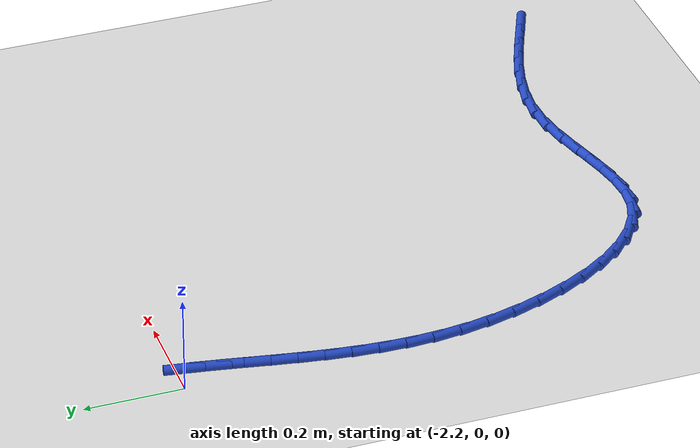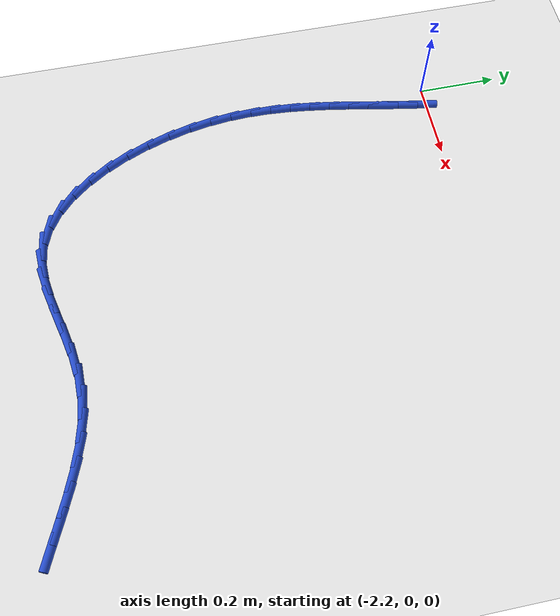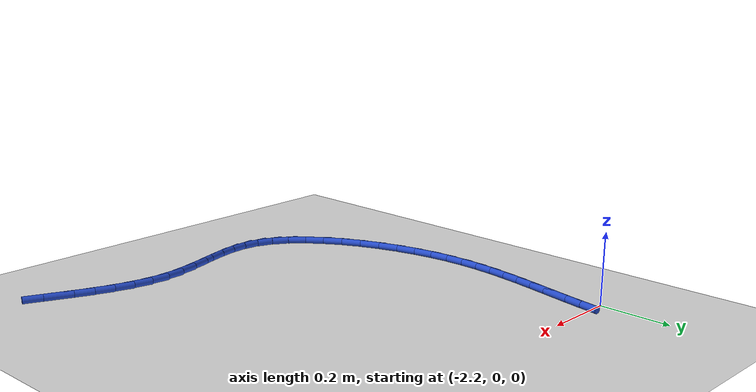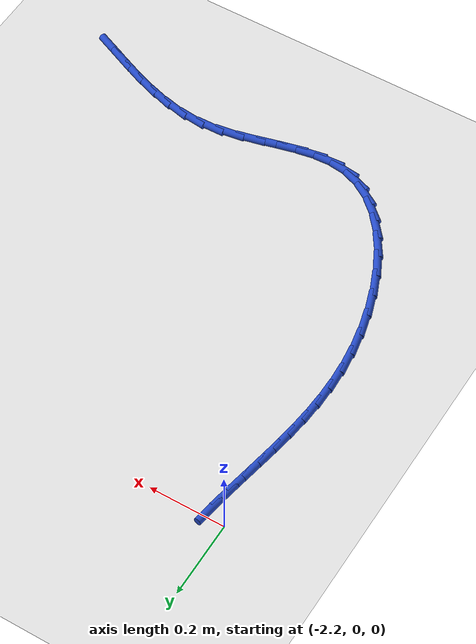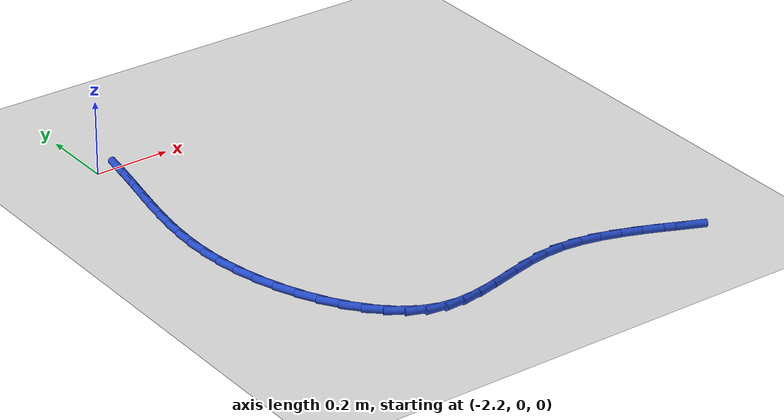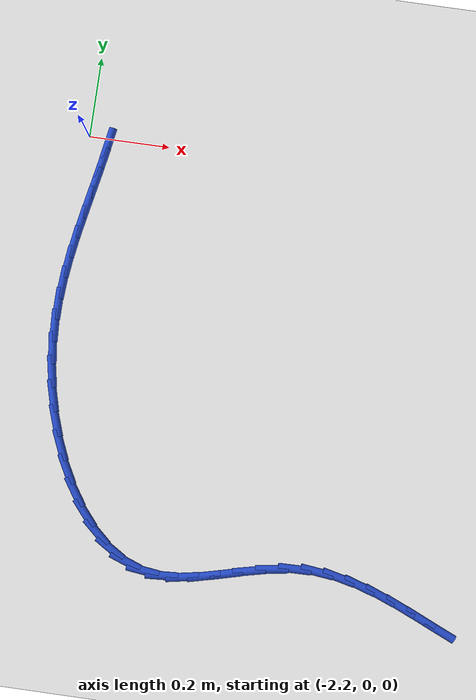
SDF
<sdf version="1.6">
 <world name="default">
  <model name="ground_plane">
   <static>1</static>
   <link name="link">
    <collision name="collision">
     <geometry><plane><normal>0 0 1</normal><size>100 100</size></plane></geometry>
     <surface><friction><ode><mu>100</mu><mu2>50</mu2></ode></friction></surface>
    </collision>
    <visual name="visual">
     <cast_shadows>0</cast_shadows>
     <geometry><plane><normal>0 0 1</normal><size>100 100</size></plane></geometry>
     <material>
      <script><uri>file://media/materials/scripts/gazebo.material</uri><name>Gazebo/WhiteGlow</name></script>
     </material>
    </visual>
   </link>
  </model>
  <model name="line">
   <link name="link_70">
    <pose>-2.1500666725365467 -0.014073362348809815 0.01 0 1.57 1.4073793517712097</pose>
    <collision name="collision">
     <geometry><cylinder><radius>0.01</radius><length>0.08</length></cylinder></geometry>
    </collision>
    <visual name="visual">
     <material>
      <script><name>Gazebo/Blue</name><uri>file://media/materials/scripts/gazebo.material</uri></script>
     </material>
     <geometry><cylinder><radius>0.01</radius><length>0.08</length></cylinder></geometry>
    </visual>
   </link>
   <link name="link_71">
    <pose>-2.158434309652418 -0.06482095419964486 0.01 0 1.57 1.3890916363929153</pose>
    <collision name="collision">
     <geometry><cylinder><radius>0.01</radius><length>0.08</length></cylinder></geometry>
    </collision>
    <visual name="visual">
     <material>
      <script><name>Gazebo/Blue</name><uri>file://media/materials/scripts/gazebo.material</uri></script>
     </material>
     <geometry><cylinder><radius>0.01</radius><length>0.08</length></cylinder></geometry>
    </visual>
   </link>
   <link name="link_72">
    <pose>-2.167714118520429 -0.11532847886706946 0.01 0 1.57 1.3819685928390033</pose>
    <collision name="collision">
     <geometry><cylinder><radius>0.01</radius><length>0.08</length></cylinder></geometry>
    </collision>
    <visual name="visual">
     <material>
      <script><name>Gazebo/Blue</name><uri>file://media/materials/scripts/gazebo.material</uri></script>
     </material>
     <geometry><cylinder><radius>0.01</radius><length>0.08</length></cylinder></geometry>
    </visual>
   </link>
   <link name="link_73">
    <pose>-2.177356044744708 -0.16578216733681433 0.01 0 1.57 1.3860385637002255</pose>
    <collision name="collision">
     <geometry><cylinder><radius>0.01</radius><length>0.08</length></cylinder></geometry>
    </collision>
    <visual name="visual">
     <material>
      <script><name>Gazebo/Blue</name><uri>file://media/materials/scripts/gazebo.material</uri></script>
     </material>
     <geometry><cylinder><radius>0.01</radius><length>0.08</length></cylinder></geometry>
    </visual>
   </link>
   <link name="link_74">
    <pose>-2.186810033929385 -0.21636825059460796 0.01 0 1.57 1.4012188929763683</pose>
    <collision name="collision">
     <geometry><cylinder><radius>0.01</radius><length>0.08</length></cylinder></geometry>
    </collision>
    <visual name="visual">
     <material>
      <script><name>Gazebo/Blue</name><uri>file://media/materials/scripts/gazebo.material</uri></script>
     </material>
     <geometry><cylinder><radius>0.01</radius><length>0.08</length></cylinder></geometry>
    </visual>
   </link>
   <link name="link_75">
    <pose>-2.195526031678589 -0.26727295962618103 0.01 0 1.57 1.42730355954507</pose>
    <collision name="collision">
     <geometry><cylinder><radius>0.01</radius><length>0.08</length></cylinder></geometry>
    </collision>
    <visual name="visual">
     <material>
      <script><name>Gazebo/Blue</name><uri>file://media/materials/scripts/gazebo.material</uri></script>
     </material>
     <geometry><cylinder><radius>0.01</radius><length>0.08</length></cylinder></geometry>
    </visual>
   </link>
   <link name="link_76">
    <pose>-2.2029539835964513 -0.3186825254172635 0.01 0 1.57 1.4639157039639852</pose>
    <collision name="collision">
     <geometry><cylinder><radius>0.01</radius><length>0.08</length></cylinder></geometry>
    </collision>
    <visual name="visual">
     <material>
      <script><name>Gazebo/Blue</name><uri>file://media/materials/scripts/gazebo.material</uri></script>
     </material>
     <geometry><cylinder><radius>0.01</radius><length>0.08</length></cylinder></geometry>
    </visual>
   </link>
   <link name="link_77">
    <pose>-2.208543835287099 -0.37078317895358537 0.01 0 1.57 1.510435245248784</pose>
    <collision name="collision">
     <geometry><cylinder><radius>0.01</radius><length>0.08</length></cylinder></geometry>
    </collision>
    <visual name="visual">
     <material>
      <script><name>Gazebo/Blue</name><uri>file://media/materials/scripts/gazebo.material</uri></script>
     </material>
     <geometry><cylinder><radius>0.01</radius><length>0.08</length></cylinder></geometry>
    </visual>
   </link>
   <link name="link_78">
    <pose>-2.211745532354663 -0.4237611512208773 0.01 0 1.57 1.5659207061409537</pose>
    <collision name="collision">
     <geometry><cylinder><radius>0.01</radius><length>0.08</length></cylinder></geometry>
    </collision>
    <visual name="visual">
     <material>
      <script><name>Gazebo/Blue</name><uri>file://media/materials/scripts/gazebo.material</uri></script>
     </material>
     <geometry><cylinder><radius>0.01</radius><length>0.08</length></cylinder></geometry>
    </visual>
   </link>
   <link name="link_79">
    <pose>-2.212009020403273 -0.4778026732048679 0.01 0 1.57 -1.5125389486565848</pose>
    <collision name="collision">
     <geometry><cylinder><radius>0.01</radius><length>0.08</length></cylinder></geometry>
    </collision>
    <visual name="visual">
     <material>
      <script><name>Gazebo/Blue</name><uri>file://media/materials/scripts/gazebo.material</uri></script>
     </material>
     <geometry><cylinder><radius>0.01</radius><length>0.08</length></cylinder></geometry>
    </visual>
   </link>
   <link name="link_80">
    <pose>-2.208784245037058 -0.5330939758912877 0.01 0 1.57 -1.4434660505472892</pose>
    <collision name="collision">
     <geometry><cylinder><radius>0.01</radius><length>0.08</length></cylinder></geometry>
    </collision>
    <visual name="visual">
     <material>
      <script><name>Gazebo/Blue</name><uri>file://media/materials/scripts/gazebo.material</uri></script>
     </material>
     <geometry><cylinder><radius>0.01</radius><length>0.08</length></cylinder></geometry>
    </visual>
   </link>
   <link name="link_81">
    <pose>-2.201522078583944 -0.5898195011394252 0.01 0 1.57 -1.3724774112627616</pose>
    <collision name="collision">
     <geometry><cylinder><radius>0.01</radius><length>0.08</length></cylinder></geometry>
    </collision>
    <visual name="visual">
     <material>
      <script><name>Gazebo/Blue</name><uri>file://media/materials/scripts/gazebo.material</uri></script>
     </material>
     <geometry><cylinder><radius>0.01</radius><length>0.08</length></cylinder></geometry>
    </visual>
   </link>
   <link name="link_82">
    <pose>-2.1898756876331653 -0.6477731429306848 0.01 0 1.57 -1.3032933763600985</pose>
    <collision name="collision">
     <geometry><cylinder><radius>0.01</radius><length>0.08</length></cylinder></geometry>
    </collision>
    <visual name="visual">
     <material>
      <script><name>Gazebo/Blue</name><uri>file://media/materials/scripts/gazebo.material</uri></script>
     </material>
     <geometry><cylinder><radius>0.01</radius><length>0.08</length></cylinder></geometry>
    </visual>
   </link>
   <link name="link_83">
    <pose>-2.173952480607781 -0.7058718391573645 0.01 0 1.57 -1.2330864776133847</pose>
    <collision name="collision">
     <geometry><cylinder><radius>0.01</radius><length>0.08</length></cylinder></geometry>
    </collision>
    <visual name="visual">
     <material>
      <script><name>Gazebo/Blue</name><uri>file://media/materials/scripts/gazebo.material</uri></script>
     </material>
     <geometry><cylinder><radius>0.01</radius><length>0.08</length></cylinder></geometry>
    </visual>
   </link>
   <link name="link_84">
    <pose>-2.1539217792712275 -0.7629129982523486 0.01 0 1.57 -1.1583525900833382</pose>
    <collision name="collision">
     <geometry><cylinder><radius>0.01</radius><length>0.08</length></cylinder></geometry>
    </collision>
    <visual name="visual">
     <material>
      <script><name>Gazebo/Blue</name><uri>file://media/materials/scripts/gazebo.material</uri></script>
     </material>
     <geometry><cylinder><radius>0.01</radius><length>0.08</length></cylinder></geometry>
    </visual>
   </link>
   <link name="link_85">
    <pose>-2.1299529053869435 -0.8176940286485201 0.01 0 1.57 -1.0752733425082686</pose>
    <collision name="collision">
     <geometry><cylinder><radius>0.01</radius><length>0.08</length></cylinder></geometry>
    </collision>
    <visual name="visual">
     <material>
      <script><name>Gazebo/Blue</name><uri>file://media/materials/scripts/gazebo.material</uri></script>
     </material>
     <geometry><cylinder><radius>0.01</radius><length>0.08</length></cylinder></geometry>
    </visual>
   </link>
   <link name="link_86">
    <pose>-2.102215180718364 -0.8690123387787622 0.01 0 1.57 -0.9793107768828051</pose>
    <collision name="collision">
     <geometry><cylinder><radius>0.01</radius><length>0.08</length></cylinder></geometry>
    </collision>
    <visual name="visual">
     <material>
      <script><name>Gazebo/Blue</name><uri>file://media/materials/scripts/gazebo.material</uri></script>
     </material>
     <geometry><cylinder><radius>0.01</radius><length>0.08</length></cylinder></geometry>
    </visual>
   </link>
   <link name="link_87">
    <pose>-2.070877927028926 -0.9156653370759581 0.01 0 1.57 -0.8648786932354402</pose>
    <collision name="collision">
     <geometry><cylinder><radius>0.01</radius><length>0.08</length></cylinder></geometry>
    </collision>
    <visual name="visual">
     <material>
      <script><name>Gazebo/Blue</name><uri>file://media/materials/scripts/gazebo.material</uri></script>
     </material>
     <geometry><cylinder><radius>0.01</radius><length>0.08</length></cylinder></geometry>
    </visual>
   </link>
   <link name="link_88">
    <pose>-2.0361104660820675 -0.9564504319729896 0.01 0 1.57 -0.7253426540645472</pose>
    <collision name="collision">
     <geometry><cylinder><radius>0.01</radius><length>0.08</length></cylinder></geometry>
    </collision>
    <visual name="visual">
     <material>
      <script><name>Gazebo/Blue</name><uri>file://media/materials/scripts/gazebo.material</uri></script>
     </material>
     <geometry><cylinder><radius>0.01</radius><length>0.08</length></cylinder></geometry>
    </visual>
   </link>
   <link name="link_89">
    <pose>-1.9980821196412246 -0.9901650319027405 0.01 0 1.57 -0.5540671369398662</pose>
    <collision name="collision">
     <geometry><cylinder><radius>0.01</radius><length>0.08</length></cylinder></geometry>
    </collision>
    <visual name="visual">
     <material>
      <script><name>Gazebo/Blue</name><uri>file://media/materials/scripts/gazebo.material</uri></script>
     </material>
     <geometry><cylinder><radius>0.01</radius><length>0.08</length></cylinder></geometry>
    </visual>
   </link>
   <link name="link_90">
    <pose>-1.9569622094698347 -1.0156065452980938 0.01 0 1.57 -0.3477781286602083</pose>
    <collision name="collision">
     <geometry><cylinder><radius>0.01</radius><length>0.08</length></cylinder></geometry>
    </collision>
    <visual name="visual">
     <material>
      <script><name>Gazebo/Blue</name><uri>file://media/materials/scripts/gazebo.material</uri></script>
     </material>
     <geometry><cylinder><radius>0.01</radius><length>0.08</length></cylinder></geometry>
    </visual>
   </link>
   <link name="link_91">
    <pose>-1.9129200573313336 -1.0315723805919326 0.01 0 1.57 -0.11927420023992312</pose>
    <collision name="collision">
     <geometry><cylinder><radius>0.01</radius><length>0.08</length></cylinder></geometry>
    </collision>
    <visual name="visual">
     <material>
      <script><name>Gazebo/Blue</name><uri>file://media/materials/scripts/gazebo.material</uri></script>
     </material>
     <geometry><cylinder><radius>0.01</radius><length>0.08</length></cylinder></geometry>
    </visual>
   </link>
   <link name="link_92">
    <pose>-1.8661494550234656 -1.0371775121799673 0.01 0 1.57 0.0656159501777242</pose>
    <collision name="collision">
     <geometry><cylinder><radius>0.01</radius><length>0.08</length></cylinder></geometry>
    </collision>
    <visual name="visual">
     <material>
      <script><name>Gazebo/Blue</name><uri>file://media/materials/scripts/gazebo.material</uri></script>
     </material>
     <geometry><cylinder><radius>0.01</radius><length>0.08</length></cylinder></geometry>
    </visual>
   </link>
   <link name="link_93">
    <pose>-1.8170301243293325 -1.0339498671363399 0.01 0 1.57 0.182725099711409</pose>
    <collision name="collision">
     <geometry><cylinder><radius>0.01</radius><length>0.08</length></cylinder></geometry>
    </collision>
    <visual name="visual">
     <material>
      <script><name>Gazebo/Blue</name><uri>file://media/materials/scripts/gazebo.material</uri></script>
     </material>
     <geometry><cylinder><radius>0.01</radius><length>0.08</length></cylinder></geometry>
    </visual>
   </link>
   <link name="link_94">
    <pose>-1.7660271520419506 -1.0245252182057918 0.01 0 1.57 0.2427294411818098</pose>
    <collision name="collision">
     <geometry><cylinder><radius>0.01</radius><length>0.08</length></cylinder></geometry>
    </collision>
    <visual name="visual">
     <material>
      <script><name>Gazebo/Blue</name><uri>file://media/materials/scripts/gazebo.material</uri></script>
     </material>
     <geometry><cylinder><radius>0.01</radius><length>0.08</length></cylinder></geometry>
    </visual>
   </link>
   <link name="link_95">
    <pose>-1.713606073102266 -1.0115451540844111 0.01 0 1.57 0.2546618399749458</pose>
    <collision name="collision">
     <geometry><cylinder><radius>0.01</radius><length>0.08</length></cylinder></geometry>
    </collision>
    <visual name="visual">
     <material>
      <script><name>Gazebo/Blue</name><uri>file://media/materials/scripts/gazebo.material</uri></script>
     </material>
     <geometry><cylinder><radius>0.01</radius><length>0.08</length></cylinder></geometry>
    </visual>
   </link>
   <link name="link_96">
    <pose>-1.660232422451227 -0.997651263468287 0.01 0 1.57 0.2221532295522316</pose>
    <collision name="collision">
     <geometry><cylinder><radius>0.01</radius><length>0.08</length></cylinder></geometry>
    </collision>
    <visual name="visual">
     <material>
      <script><name>Gazebo/Blue</name><uri>file://media/materials/scripts/gazebo.material</uri></script>
     </material>
     <geometry><cylinder><radius>0.01</radius><length>0.08</length></cylinder></geometry>
    </visual>
   </link>
   <link name="link_97">
    <pose>-1.6063717350297797 -0.9854851350535069 0.01 0 1.57 0.14370303641570378</pose>
    <collision name="collision">
     <geometry><cylinder><radius>0.01</radius><length>0.08</length></cylinder></geometry>
    </collision>
    <visual name="visual">
     <material>
      <script><name>Gazebo/Blue</name><uri>file://media/materials/scripts/gazebo.material</uri></script>
     </material>
     <geometry><cylinder><radius>0.01</radius><length>0.08</length></cylinder></geometry>
    </visual>
   </link>
   <link name="link_98">
    <pose>-1.55248954577887 -0.9776883575361585 0.01 0 1.57 0.018215348458225356</pose>
    <collision name="collision">
     <geometry><cylinder><radius>0.01</radius><length>0.08</length></cylinder></geometry>
    </collision>
    <visual name="visual">
     <material>
      <script><name>Gazebo/Blue</name><uri>file://media/materials/scripts/gazebo.material</uri></script>
     </material>
     <geometry><cylinder><radius>0.01</radius><length>0.08</length></cylinder></geometry>
    </visual>
   </link>
   <link name="link_99">
    <pose>-1.4990283742087516 -0.9767144359492643 0.01 0 1.57 -0.1141323952596534</pose>
    <collision name="collision">
     <geometry><cylinder><radius>0.01</radius><length>0.08</length></cylinder></geometry>
    </collision>
    <visual name="visual">
     <material>
      <script><name>Gazebo/Blue</name><uri>file://media/materials/scripts/gazebo.material</uri></script>
     </material>
     <geometry><cylinder><radius>0.01</radius><length>0.08</length></cylinder></geometry>
    </visual>
   </link>
   <link name="link_100">
    <pose>-1.4461564275682757 -0.9827751768916623 0.01 0 1.57 -0.22255123277540872</pose>
    <collision name="collision">
     <geometry><cylinder><radius>0.01</radius><length>0.08</length></cylinder></geometry>
    </collision>
    <visual name="visual">
     <material>
      <script><name>Gazebo/Blue</name><uri>file://media/materials/scripts/gazebo.material</uri></script>
     </material>
     <geometry><cylinder><radius>0.01</radius><length>0.08</length></cylinder></geometry>
    </visual>
   </link>
   <link name="link_101">
    <pose>-1.3938616747869086 -0.9946094671725926 0.01 0 1.57 -0.3056028068123754</pose>
    <collision name="collision">
     <geometry><cylinder><radius>0.01</radius><length>0.08</length></cylinder></geometry>
    </collision>
    <visual name="visual">
     <material>
      <script><name>Gazebo/Blue</name><uri>file://media/materials/scripts/gazebo.material</uri></script>
     </material>
     <geometry><cylinder><radius>0.01</radius><length>0.08</length></cylinder></geometry>
    </visual>
   </link>
   <link name="link_102">
    <pose>-1.342128930777539 -1.0109304187635704 0.01 0 1.57 -0.36434275358205054</pose>
    <collision name="collision">
     <geometry><cylinder><radius>0.01</radius><length>0.08</length></cylinder></geometry>
    </collision>
    <visual name="visual">
     <material>
      <script><name>Gazebo/Blue</name><uri>file://media/materials/scripts/gazebo.material</uri></script>
     </material>
     <geometry><cylinder><radius>0.01</radius><length>0.08</length></cylinder></geometry>
    </visual>
   </link>
   <link name="link_103">
    <pose>-1.290943010453055 -1.0304511436361095 0.01 0 1.57 -0.4002900936707461</pose>
    <collision name="collision">
     <geometry><cylinder><radius>0.01</radius><length>0.08</length></cylinder></geometry>
    </collision>
    <visual name="visual">
     <material>
      <script><name>Gazebo/Blue</name><uri>file://media/materials/scripts/gazebo.material</uri></script>
     </material>
     <geometry><cylinder><radius>0.01</radius><length>0.08</length></cylinder></geometry>
    </visual>
   </link>
   <link name="link_104">
    <pose>-1.2402887287263435 -1.0518847537617235 0.01 0 1.57 -0.4144895451299158</pose>
    <collision name="collision">
     <geometry><cylinder><radius>0.01</radius><length>0.08</length></cylinder></geometry>
    </collision>
    <visual name="visual">
     <material>
      <script><name>Gazebo/Blue</name><uri>file://media/materials/scripts/gazebo.material</uri></script>
     </material>
     <geometry><cylinder><radius>0.01</radius><length>0.08</length></cylinder></geometry>
    </visual>
   </link>
   <link name="link_105">
    <pose>-1.190150900510295 -1.0739443611119266 0.01 0 1.57 -0.40703275718779564</pose>
    <collision name="collision">
     <geometry><cylinder><radius>0.01</radius><length>0.08</length></cylinder></geometry>
    </collision>
    <visual name="visual">
     <material>
      <script><name>Gazebo/Blue</name><uri>file://media/materials/scripts/gazebo.material</uri></script>
     </material>
     <geometry><cylinder><radius>0.01</radius><length>0.08</length></cylinder></geometry>
    </visual>
   </link>
  </model>
 </world>
</sdf>
